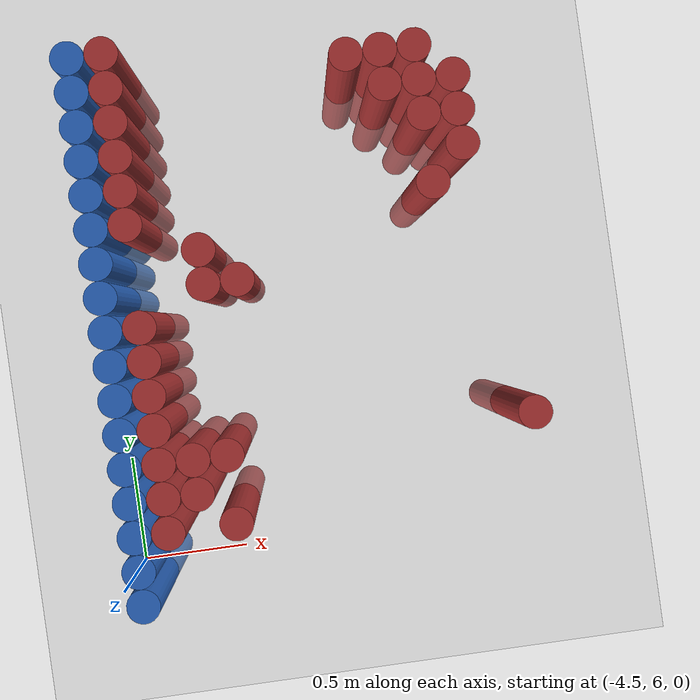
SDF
<sdf version="1.6">
 <world name="default">
  <model name="ground_plane">
   <static>1</static>
   <link name="link">
    <collision name="collision">
     <geometry><plane><normal>0 0 1</normal><size>100 100</size></plane></geometry>
     <surface><friction><ode><mu>100</mu><mu2>50</mu2></ode></friction></surface>
    </collision>
    <visual name="visual">
     <cast_shadows>0</cast_shadows>
     <geometry><plane><normal>0 0 1</normal><size>100 100</size></plane></geometry>
     <material>
      <script><uri>file://media/materials/scripts/gazebo.material</uri><name>Gazebo/Grey</name></script>
     </material>
    </visual>
   </link>
  </model>
  <model name="unit_cylinder_101">
   <static>1</static>
   <pose>-4.425000 5.925000 0.000000 0.000000 0.000000 0.000000</pose>
   <link name="link">
    <inertial>
     <mass>1</mass>
     <inertia><ixx>0.145833</ixx><ixy>0</ixy><ixz>0</ixz><iyy>0.145833</iyy><iyz>0</iyz><izz>0.125</izz></inertia>
    </inertial>
    <collision name="collision">
     <geometry><cylinder><radius>0.075000</radius><length>1</length></cylinder></geometry>
    </collision>
    <visual name="visual">
     <geometry><cylinder><radius>0.075000</radius><length>1</length></cylinder></geometry>
     <material>
      <ambient>0.152000 0.379000 0.720000 1</ambient>
      <diffuse>0.152000 0.379000 0.720000 1</diffuse>
     </material>
     <material>
      <script><name>Gazebo/Grey</name><uri>file://media/materials/scripts/gazebo.material</uri></script>
     </material>
    </visual>
   </link>
  </model>
  <model name="unit_cylinder_102">
   <static>1</static>
   <pose>-4.425000 6.075000 0.000000 0.000000 0.000000 0.000000</pose>
   <link name="link">
    <inertial>
     <mass>1</mass>
     <inertia><ixx>0.145833</ixx><ixy>0</ixy><ixz>0</ixz><iyy>0.145833</iyy><iyz>0</iyz><izz>0.125</izz></inertia>
    </inertial>
    <collision name="collision">
     <geometry><cylinder><radius>0.075000</radius><length>1</length></cylinder></geometry>
    </collision>
    <visual name="visual">
     <geometry><cylinder><radius>0.075000</radius><length>1</length></cylinder></geometry>
     <material>
      <ambient>0.152000 0.379000 0.720000 1</ambient>
      <diffuse>0.152000 0.379000 0.720000 1</diffuse>
     </material>
     <material>
      <script><name>Gazebo/Grey</name><uri>file://media/materials/scripts/gazebo.material</uri></script>
     </material>
    </visual>
   </link>
  </model>
  <model name="unit_cylinder_103">
   <static>1</static>
   <pose>-4.425000 6.225000 0.000000 0.000000 0.000000 0.000000</pose>
   <link name="link">
    <inertial>
     <mass>1</mass>
     <inertia><ixx>0.145833</ixx><ixy>0</ixy><ixz>0</ixz><iyy>0.145833</iyy><iyz>0</iyz><izz>0.125</izz></inertia>
    </inertial>
    <collision name="collision">
     <geometry><cylinder><radius>0.075000</radius><length>1</length></cylinder></geometry>
    </collision>
    <visual name="visual">
     <geometry><cylinder><radius>0.075000</radius><length>1</length></cylinder></geometry>
     <material>
      <ambient>0.152000 0.379000 0.720000 1</ambient>
      <diffuse>0.152000 0.379000 0.720000 1</diffuse>
     </material>
     <material>
      <script><name>Gazebo/Grey</name><uri>file://media/materials/scripts/gazebo.material</uri></script>
     </material>
    </visual>
   </link>
  </model>
  <model name="unit_cylinder_104">
   <static>1</static>
   <pose>-4.425000 6.375000 0.000000 0.000000 0.000000 0.000000</pose>
   <link name="link">
    <inertial>
     <mass>1</mass>
     <inertia><ixx>0.145833</ixx><ixy>0</ixy><ixz>0</ixz><iyy>0.145833</iyy><iyz>0</iyz><izz>0.125</izz></inertia>
    </inertial>
    <collision name="collision">
     <geometry><cylinder><radius>0.075000</radius><length>1</length></cylinder></geometry>
    </collision>
    <visual name="visual">
     <geometry><cylinder><radius>0.075000</radius><length>1</length></cylinder></geometry>
     <material>
      <ambient>0.152000 0.379000 0.720000 1</ambient>
      <diffuse>0.152000 0.379000 0.720000 1</diffuse>
     </material>
     <material>
      <script><name>Gazebo/Grey</name><uri>file://media/materials/scripts/gazebo.material</uri></script>
     </material>
    </visual>
   </link>
  </model>
  <model name="unit_cylinder_105">
   <static>1</static>
   <pose>-4.425000 6.525000 0.000000 0.000000 0.000000 0.000000</pose>
   <link name="link">
    <inertial>
     <mass>1</mass>
     <inertia><ixx>0.145833</ixx><ixy>0</ixy><ixz>0</ixz><iyy>0.145833</iyy><iyz>0</iyz><izz>0.125</izz></inertia>
    </inertial>
    <collision name="collision">
     <geometry><cylinder><radius>0.075000</radius><length>1</length></cylinder></geometry>
    </collision>
    <visual name="visual">
     <geometry><cylinder><radius>0.075000</radius><length>1</length></cylinder></geometry>
     <material>
      <ambient>0.152000 0.379000 0.720000 1</ambient>
      <diffuse>0.152000 0.379000 0.720000 1</diffuse>
     </material>
     <material>
      <script><name>Gazebo/Grey</name><uri>file://media/materials/scripts/gazebo.material</uri></script>
     </material>
    </visual>
   </link>
  </model>
  <model name="unit_cylinder_106">
   <static>1</static>
   <pose>-4.425000 6.675000 0.000000 0.000000 0.000000 0.000000</pose>
   <link name="link">
    <inertial>
     <mass>1</mass>
     <inertia><ixx>0.145833</ixx><ixy>0</ixy><ixz>0</ixz><iyy>0.145833</iyy><iyz>0</iyz><izz>0.125</izz></inertia>
    </inertial>
    <collision name="collision">
     <geometry><cylinder><radius>0.075000</radius><length>1</length></cylinder></geometry>
    </collision>
    <visual name="visual">
     <geometry><cylinder><radius>0.075000</radius><length>1</length></cylinder></geometry>
     <material>
      <ambient>0.152000 0.379000 0.720000 1</ambient>
      <diffuse>0.152000 0.379000 0.720000 1</diffuse>
     </material>
     <material>
      <script><name>Gazebo/Grey</name><uri>file://media/materials/scripts/gazebo.material</uri></script>
     </material>
    </visual>
   </link>
  </model>
  <model name="unit_cylinder_107">
   <static>1</static>
   <pose>-4.425000 6.825000 0.000000 0.000000 0.000000 0.000000</pose>
   <link name="link">
    <inertial>
     <mass>1</mass>
     <inertia><ixx>0.145833</ixx><ixy>0</ixy><ixz>0</ixz><iyy>0.145833</iyy><iyz>0</iyz><izz>0.125</izz></inertia>
    </inertial>
    <collision name="collision">
     <geometry><cylinder><radius>0.075000</radius><length>1</length></cylinder></geometry>
    </collision>
    <visual name="visual">
     <geometry><cylinder><radius>0.075000</radius><length>1</length></cylinder></geometry>
     <material>
      <ambient>0.152000 0.379000 0.720000 1</ambient>
      <diffuse>0.152000 0.379000 0.720000 1</diffuse>
     </material>
     <material>
      <script><name>Gazebo/Grey</name><uri>file://media/materials/scripts/gazebo.material</uri></script>
     </material>
    </visual>
   </link>
  </model>
  <model name="unit_cylinder_108">
   <static>1</static>
   <pose>-4.425000 6.975000 0.000000 0.000000 0.000000 0.000000</pose>
   <link name="link">
    <inertial>
     <mass>1</mass>
     <inertia><ixx>0.145833</ixx><ixy>0</ixy><ixz>0</ixz><iyy>0.145833</iyy><iyz>0</iyz><izz>0.125</izz></inertia>
    </inertial>
    <collision name="collision">
     <geometry><cylinder><radius>0.075000</radius><length>1</length></cylinder></geometry>
    </collision>
    <visual name="visual">
     <geometry><cylinder><radius>0.075000</radius><length>1</length></cylinder></geometry>
     <material>
      <ambient>0.152000 0.379000 0.720000 1</ambient>
      <diffuse>0.152000 0.379000 0.720000 1</diffuse>
     </material>
     <material>
      <script><name>Gazebo/Grey</name><uri>file://media/materials/scripts/gazebo.material</uri></script>
     </material>
    </visual>
   </link>
  </model>
  <model name="unit_cylinder_109">
   <static>1</static>
   <pose>-4.425000 7.125000 0.000000 0.000000 0.000000 0.000000</pose>
   <link name="link">
    <inertial>
     <mass>1</mass>
     <inertia><ixx>0.145833</ixx><ixy>0</ixy><ixz>0</ixz><iyy>0.145833</iyy><iyz>0</iyz><izz>0.125</izz></inertia>
    </inertial>
    <collision name="collision">
     <geometry><cylinder><radius>0.075000</radius><length>1</length></cylinder></geometry>
    </collision>
    <visual name="visual">
     <geometry><cylinder><radius>0.075000</radius><length>1</length></cylinder></geometry>
     <material>
      <ambient>0.152000 0.379000 0.720000 1</ambient>
      <diffuse>0.152000 0.379000 0.720000 1</diffuse>
     </material>
     <material>
      <script><name>Gazebo/Grey</name><uri>file://media/materials/scripts/gazebo.material</uri></script>
     </material>
    </visual>
   </link>
  </model>
  <model name="unit_cylinder_110">
   <static>1</static>
   <pose>-4.425000 7.275000 0.000000 0.000000 0.000000 0.000000</pose>
   <link name="link">
    <inertial>
     <mass>1</mass>
     <inertia><ixx>0.145833</ixx><ixy>0</ixy><ixz>0</ixz><iyy>0.145833</iyy><iyz>0</iyz><izz>0.125</izz></inertia>
    </inertial>
    <collision name="collision">
     <geometry><cylinder><radius>0.075000</radius><length>1</length></cylinder></geometry>
    </collision>
    <visual name="visual">
     <geometry><cylinder><radius>0.075000</radius><length>1</length></cylinder></geometry>
     <material>
      <ambient>0.152000 0.379000 0.720000 1</ambient>
      <diffuse>0.152000 0.379000 0.720000 1</diffuse>
     </material>
     <material>
      <script><name>Gazebo/Grey</name><uri>file://media/materials/scripts/gazebo.material</uri></script>
     </material>
    </visual>
   </link>
  </model>
  <model name="unit_cylinder_111">
   <static>1</static>
   <pose>-4.425000 7.425000 0.000000 0.000000 0.000000 0.000000</pose>
   <link name="link">
    <inertial>
     <mass>1</mass>
     <inertia><ixx>0.145833</ixx><ixy>0</ixy><ixz>0</ixz><iyy>0.145833</iyy><iyz>0</iyz><izz>0.125</izz></inertia>
    </inertial>
    <collision name="collision">
     <geometry><cylinder><radius>0.075000</radius><length>1</length></cylinder></geometry>
    </collision>
    <visual name="visual">
     <geometry><cylinder><radius>0.075000</radius><length>1</length></cylinder></geometry>
     <material>
      <ambient>0.152000 0.379000 0.720000 1</ambient>
      <diffuse>0.152000 0.379000 0.720000 1</diffuse>
     </material>
     <material>
      <script><name>Gazebo/Grey</name><uri>file://media/materials/scripts/gazebo.material</uri></script>
     </material>
    </visual>
   </link>
  </model>
  <model name="unit_cylinder_112">
   <static>1</static>
   <pose>-4.425000 7.575000 0.000000 0.000000 0.000000 0.000000</pose>
   <link name="link">
    <inertial>
     <mass>1</mass>
     <inertia><ixx>0.145833</ixx><ixy>0</ixy><ixz>0</ixz><iyy>0.145833</iyy><iyz>0</iyz><izz>0.125</izz></inertia>
    </inertial>
    <collision name="collision">
     <geometry><cylinder><radius>0.075000</radius><length>1</length></cylinder></geometry>
    </collision>
    <visual name="visual">
     <geometry><cylinder><radius>0.075000</radius><length>1</length></cylinder></geometry>
     <material>
      <ambient>0.152000 0.379000 0.720000 1</ambient>
      <diffuse>0.152000 0.379000 0.720000 1</diffuse>
     </material>
     <material>
      <script><name>Gazebo/Grey</name><uri>file://media/materials/scripts/gazebo.material</uri></script>
     </material>
    </visual>
   </link>
  </model>
  <model name="unit_cylinder_113">
   <static>1</static>
   <pose>-4.425000 7.725000 0.000000 0.000000 0.000000 0.000000</pose>
   <link name="link">
    <inertial>
     <mass>1</mass>
     <inertia><ixx>0.145833</ixx><ixy>0</ixy><ixz>0</ixz><iyy>0.145833</iyy><iyz>0</iyz><izz>0.125</izz></inertia>
    </inertial>
    <collision name="collision">
     <geometry><cylinder><radius>0.075000</radius><length>1</length></cylinder></geometry>
    </collision>
    <visual name="visual">
     <geometry><cylinder><radius>0.075000</radius><length>1</length></cylinder></geometry>
     <material>
      <ambient>0.152000 0.379000 0.720000 1</ambient>
      <diffuse>0.152000 0.379000 0.720000 1</diffuse>
     </material>
     <material>
      <script><name>Gazebo/Grey</name><uri>file://media/materials/scripts/gazebo.material</uri></script>
     </material>
    </visual>
   </link>
  </model>
  <model name="unit_cylinder_114">
   <static>1</static>
   <pose>-4.425000 7.875000 0.000000 0.000000 0.000000 0.000000</pose>
   <link name="link">
    <inertial>
     <mass>1</mass>
     <inertia><ixx>0.145833</ixx><ixy>0</ixy><ixz>0</ixz><iyy>0.145833</iyy><iyz>0</iyz><izz>0.125</izz></inertia>
    </inertial>
    <collision name="collision">
     <geometry><cylinder><radius>0.075000</radius><length>1</length></cylinder></geometry>
    </collision>
    <visual name="visual">
     <geometry><cylinder><radius>0.075000</radius><length>1</length></cylinder></geometry>
     <material>
      <ambient>0.152000 0.379000 0.720000 1</ambient>
      <diffuse>0.152000 0.379000 0.720000 1</diffuse>
     </material>
     <material>
      <script><name>Gazebo/Grey</name><uri>file://media/materials/scripts/gazebo.material</uri></script>
     </material>
    </visual>
   </link>
  </model>
  <model name="unit_cylinder_115">
   <static>1</static>
   <pose>-4.425000 8.025000 0.000000 0.000000 0.000000 0.000000</pose>
   <link name="link">
    <inertial>
     <mass>1</mass>
     <inertia><ixx>0.145833</ixx><ixy>0</ixy><ixz>0</ixz><iyy>0.145833</iyy><iyz>0</iyz><izz>0.125</izz></inertia>
    </inertial>
    <collision name="collision">
     <geometry><cylinder><radius>0.075000</radius><length>1</length></cylinder></geometry>
    </collision>
    <visual name="visual">
     <geometry><cylinder><radius>0.075000</radius><length>1</length></cylinder></geometry>
     <material>
      <ambient>0.152000 0.379000 0.720000 1</ambient>
      <diffuse>0.152000 0.379000 0.720000 1</diffuse>
     </material>
     <material>
      <script><name>Gazebo/Grey</name><uri>file://media/materials/scripts/gazebo.material</uri></script>
     </material>
    </visual>
   </link>
  </model>
  <model name="unit_cylinder_116">
   <static>1</static>
   <pose>-4.425000 8.175000 0.000000 0.000000 0.000000 0.000000</pose>
   <link name="link">
    <inertial>
     <mass>1</mass>
     <inertia><ixx>0.145833</ixx><ixy>0</ixy><ixz>0</ixz><iyy>0.145833</iyy><iyz>0</iyz><izz>0.125</izz></inertia>
    </inertial>
    <collision name="collision">
     <geometry><cylinder><radius>0.075000</radius><length>1</length></cylinder></geometry>
    </collision>
    <visual name="visual">
     <geometry><cylinder><radius>0.075000</radius><length>1</length></cylinder></geometry>
     <material>
      <ambient>0.152000 0.379000 0.720000 1</ambient>
      <diffuse>0.152000 0.379000 0.720000 1</diffuse>
     </material>
     <material>
      <script><name>Gazebo/Grey</name><uri>file://media/materials/scripts/gazebo.material</uri></script>
     </material>
    </visual>
   </link>
  </model>
  <model name="unit_cylinder_117">
   <static>1</static>
   <pose>-4.425000 8.325000 0.000000 0.000000 0.000000 0.000000</pose>
   <link name="link">
    <inertial>
     <mass>1</mass>
     <inertia><ixx>0.145833</ixx><ixy>0</ixy><ixz>0</ixz><iyy>0.145833</iyy><iyz>0</iyz><izz>0.125</izz></inertia>
    </inertial>
    <collision name="collision">
     <geometry><cylinder><radius>0.075000</radius><length>1</length></cylinder></geometry>
    </collision>
    <visual name="visual">
     <geometry><cylinder><radius>0.075000</radius><length>1</length></cylinder></geometry>
     <material>
      <ambient>0.152000 0.379000 0.720000 1</ambient>
      <diffuse>0.152000 0.379000 0.720000 1</diffuse>
     </material>
     <material>
      <script><name>Gazebo/Grey</name><uri>file://media/materials/scripts/gazebo.material</uri></script>
     </material>
    </visual>
   </link>
  </model>
  <model name="unit_cylinder_130">
   <static>1</static>
   <pose>-4.275000 6.225000 0.000000 0.000000 0.000000 0.000000</pose>
   <link name="link">
    <inertial>
     <mass>1</mass>
     <inertia><ixx>0.145833</ixx><ixy>0</ixy><ixz>0</ixz><iyy>0.145833</iyy><iyz>0</iyz><izz>0.125</izz></inertia>
    </inertial>
    <collision name="collision">
     <geometry><cylinder><radius>0.075000</radius><length>1</length></cylinder></geometry>
    </collision>
    <visual name="visual">
     <geometry><cylinder><radius>0.075000</radius><length>1</length></cylinder></geometry>
     <material>
      <ambient>0.648000 0.192000 0.192000 1</ambient>
      <diffuse>0.648000 0.192000 0.192000 1</diffuse>
     </material>
     <material>
      <script><name>Gazebo/Grey</name><uri>file://media/materials/scripts/gazebo.material</uri></script>
     </material>
    </visual>
   </link>
  </model>
  <model name="unit_cylinder_131">
   <static>1</static>
   <pose>-4.275000 6.375000 0.000000 0.000000 0.000000 0.000000</pose>
   <link name="link">
    <inertial>
     <mass>1</mass>
     <inertia><ixx>0.145833</ixx><ixy>0</ixy><ixz>0</ixz><iyy>0.145833</iyy><iyz>0</iyz><izz>0.125</izz></inertia>
    </inertial>
    <collision name="collision">
     <geometry><cylinder><radius>0.075000</radius><length>1</length></cylinder></geometry>
    </collision>
    <visual name="visual">
     <geometry><cylinder><radius>0.075000</radius><length>1</length></cylinder></geometry>
     <material>
      <ambient>0.648000 0.192000 0.192000 1</ambient>
      <diffuse>0.648000 0.192000 0.192000 1</diffuse>
     </material>
     <material>
      <script><name>Gazebo/Grey</name><uri>file://media/materials/scripts/gazebo.material</uri></script>
     </material>
    </visual>
   </link>
  </model>
  <model name="unit_cylinder_132">
   <static>1</static>
   <pose>-4.275000 6.525000 0.000000 0.000000 0.000000 0.000000</pose>
   <link name="link">
    <inertial>
     <mass>1</mass>
     <inertia><ixx>0.145833</ixx><ixy>0</ixy><ixz>0</ixz><iyy>0.145833</iyy><iyz>0</iyz><izz>0.125</izz></inertia>
    </inertial>
    <collision name="collision">
     <geometry><cylinder><radius>0.075000</radius><length>1</length></cylinder></geometry>
    </collision>
    <visual name="visual">
     <geometry><cylinder><radius>0.075000</radius><length>1</length></cylinder></geometry>
     <material>
      <ambient>0.648000 0.192000 0.192000 1</ambient>
      <diffuse>0.648000 0.192000 0.192000 1</diffuse>
     </material>
     <material>
      <script><name>Gazebo/Grey</name><uri>file://media/materials/scripts/gazebo.material</uri></script>
     </material>
    </visual>
   </link>
  </model>
  <model name="unit_cylinder_133">
   <static>1</static>
   <pose>-4.275000 6.675000 0.000000 0.000000 0.000000 0.000000</pose>
   <link name="link">
    <inertial>
     <mass>1</mass>
     <inertia><ixx>0.145833</ixx><ixy>0</ixy><ixz>0</ixz><iyy>0.145833</iyy><iyz>0</iyz><izz>0.125</izz></inertia>
    </inertial>
    <collision name="collision">
     <geometry><cylinder><radius>0.075000</radius><length>1</length></cylinder></geometry>
    </collision>
    <visual name="visual">
     <geometry><cylinder><radius>0.075000</radius><length>1</length></cylinder></geometry>
     <material>
      <ambient>0.648000 0.192000 0.192000 1</ambient>
      <diffuse>0.648000 0.192000 0.192000 1</diffuse>
     </material>
     <material>
      <script><name>Gazebo/Grey</name><uri>file://media/materials/scripts/gazebo.material</uri></script>
     </material>
    </visual>
   </link>
  </model>
  <model name="unit_cylinder_134">
   <static>1</static>
   <pose>-4.275000 6.825000 0.000000 0.000000 0.000000 0.000000</pose>
   <link name="link">
    <inertial>
     <mass>1</mass>
     <inertia><ixx>0.145833</ixx><ixy>0</ixy><ixz>0</ixz><iyy>0.145833</iyy><iyz>0</iyz><izz>0.125</izz></inertia>
    </inertial>
    <collision name="collision">
     <geometry><cylinder><radius>0.075000</radius><length>1</length></cylinder></geometry>
    </collision>
    <visual name="visual">
     <geometry><cylinder><radius>0.075000</radius><length>1</length></cylinder></geometry>
     <material>
      <ambient>0.648000 0.192000 0.192000 1</ambient>
      <diffuse>0.648000 0.192000 0.192000 1</diffuse>
     </material>
     <material>
      <script><name>Gazebo/Grey</name><uri>file://media/materials/scripts/gazebo.material</uri></script>
     </material>
    </visual>
   </link>
  </model>
  <model name="unit_cylinder_135">
   <static>1</static>
   <pose>-4.275000 6.975000 0.000000 0.000000 0.000000 0.000000</pose>
   <link name="link">
    <inertial>
     <mass>1</mass>
     <inertia><ixx>0.145833</ixx><ixy>0</ixy><ixz>0</ixz><iyy>0.145833</iyy><iyz>0</iyz><izz>0.125</izz></inertia>
    </inertial>
    <collision name="collision">
     <geometry><cylinder><radius>0.075000</radius><length>1</length></cylinder></geometry>
    </collision>
    <visual name="visual">
     <geometry><cylinder><radius>0.075000</radius><length>1</length></cylinder></geometry>
     <material>
      <ambient>0.648000 0.192000 0.192000 1</ambient>
      <diffuse>0.648000 0.192000 0.192000 1</diffuse>
     </material>
     <material>
      <script><name>Gazebo/Grey</name><uri>file://media/materials/scripts/gazebo.material</uri></script>
     </material>
    </visual>
   </link>
  </model>
  <model name="unit_cylinder_136">
   <static>1</static>
   <pose>-4.275000 7.125000 0.000000 0.000000 0.000000 0.000000</pose>
   <link name="link">
    <inertial>
     <mass>1</mass>
     <inertia><ixx>0.145833</ixx><ixy>0</ixy><ixz>0</ixz><iyy>0.145833</iyy><iyz>0</iyz><izz>0.125</izz></inertia>
    </inertial>
    <collision name="collision">
     <geometry><cylinder><radius>0.075000</radius><length>1</length></cylinder></geometry>
    </collision>
    <visual name="visual">
     <geometry><cylinder><radius>0.075000</radius><length>1</length></cylinder></geometry>
     <material>
      <ambient>0.648000 0.192000 0.192000 1</ambient>
      <diffuse>0.648000 0.192000 0.192000 1</diffuse>
     </material>
     <material>
      <script><name>Gazebo/Grey</name><uri>file://media/materials/scripts/gazebo.material</uri></script>
     </material>
    </visual>
   </link>
  </model>
  <model name="unit_cylinder_137">
   <static>1</static>
   <pose>-4.275000 7.575000 0.000000 0.000000 0.000000 0.000000</pose>
   <link name="link">
    <inertial>
     <mass>1</mass>
     <inertia><ixx>0.145833</ixx><ixy>0</ixy><ixz>0</ixz><iyy>0.145833</iyy><iyz>0</iyz><izz>0.125</izz></inertia>
    </inertial>
    <collision name="collision">
     <geometry><cylinder><radius>0.075000</radius><length>1</length></cylinder></geometry>
    </collision>
    <visual name="visual">
     <geometry><cylinder><radius>0.075000</radius><length>1</length></cylinder></geometry>
     <material>
      <ambient>0.648000 0.192000 0.192000 1</ambient>
      <diffuse>0.648000 0.192000 0.192000 1</diffuse>
     </material>
     <material>
      <script><name>Gazebo/Grey</name><uri>file://media/materials/scripts/gazebo.material</uri></script>
     </material>
    </visual>
   </link>
  </model>
  <model name="unit_cylinder_138">
   <static>1</static>
   <pose>-4.275000 7.725000 0.000000 0.000000 0.000000 0.000000</pose>
   <link name="link">
    <inertial>
     <mass>1</mass>
     <inertia><ixx>0.145833</ixx><ixy>0</ixy><ixz>0</ixz><iyy>0.145833</iyy><iyz>0</iyz><izz>0.125</izz></inertia>
    </inertial>
    <collision name="collision">
     <geometry><cylinder><radius>0.075000</radius><length>1</length></cylinder></geometry>
    </collision>
    <visual name="visual">
     <geometry><cylinder><radius>0.075000</radius><length>1</length></cylinder></geometry>
     <material>
      <ambient>0.648000 0.192000 0.192000 1</ambient>
      <diffuse>0.648000 0.192000 0.192000 1</diffuse>
     </material>
     <material>
      <script><name>Gazebo/Grey</name><uri>file://media/materials/scripts/gazebo.material</uri></script>
     </material>
    </visual>
   </link>
  </model>
  <model name="unit_cylinder_139">
   <static>1</static>
   <pose>-4.275000 7.875000 0.000000 0.000000 0.000000 0.000000</pose>
   <link name="link">
    <inertial>
     <mass>1</mass>
     <inertia><ixx>0.145833</ixx><ixy>0</ixy><ixz>0</ixz><iyy>0.145833</iyy><iyz>0</iyz><izz>0.125</izz></inertia>
    </inertial>
    <collision name="collision">
     <geometry><cylinder><radius>0.075000</radius><length>1</length></cylinder></geometry>
    </collision>
    <visual name="visual">
     <geometry><cylinder><radius>0.075000</radius><length>1</length></cylinder></geometry>
     <material>
      <ambient>0.648000 0.192000 0.192000 1</ambient>
      <diffuse>0.648000 0.192000 0.192000 1</diffuse>
     </material>
     <material>
      <script><name>Gazebo/Grey</name><uri>file://media/materials/scripts/gazebo.material</uri></script>
     </material>
    </visual>
   </link>
  </model>
  <model name="unit_cylinder_140">
   <static>1</static>
   <pose>-4.275000 8.025000 0.000000 0.000000 0.000000 0.000000</pose>
   <link name="link">
    <inertial>
     <mass>1</mass>
     <inertia><ixx>0.145833</ixx><ixy>0</ixy><ixz>0</ixz><iyy>0.145833</iyy><iyz>0</iyz><izz>0.125</izz></inertia>
    </inertial>
    <collision name="collision">
     <geometry><cylinder><radius>0.075000</radius><length>1</length></cylinder></geometry>
    </collision>
    <visual name="visual">
     <geometry><cylinder><radius>0.075000</radius><length>1</length></cylinder></geometry>
     <material>
      <ambient>0.648000 0.192000 0.192000 1</ambient>
      <diffuse>0.648000 0.192000 0.192000 1</diffuse>
     </material>
     <material>
      <script><name>Gazebo/Grey</name><uri>file://media/materials/scripts/gazebo.material</uri></script>
     </material>
    </visual>
   </link>
  </model>
  <model name="unit_cylinder_141">
   <static>1</static>
   <pose>-4.275000 8.175000 0.000000 0.000000 0.000000 0.000000</pose>
   <link name="link">
    <inertial>
     <mass>1</mass>
     <inertia><ixx>0.145833</ixx><ixy>0</ixy><ixz>0</ixz><iyy>0.145833</iyy><iyz>0</iyz><izz>0.125</izz></inertia>
    </inertial>
    <collision name="collision">
     <geometry><cylinder><radius>0.075000</radius><length>1</length></cylinder></geometry>
    </collision>
    <visual name="visual">
     <geometry><cylinder><radius>0.075000</radius><length>1</length></cylinder></geometry>
     <material>
      <ambient>0.648000 0.192000 0.192000 1</ambient>
      <diffuse>0.648000 0.192000 0.192000 1</diffuse>
     </material>
     <material>
      <script><name>Gazebo/Grey</name><uri>file://media/materials/scripts/gazebo.material</uri></script>
     </material>
    </visual>
   </link>
  </model>
  <model name="unit_cylinder_142">
   <static>1</static>
   <pose>-4.275000 8.325000 0.000000 0.000000 0.000000 0.000000</pose>
   <link name="link">
    <inertial>
     <mass>1</mass>
     <inertia><ixx>0.145833</ixx><ixy>0</ixy><ixz>0</ixz><iyy>0.145833</iyy><iyz>0</iyz><izz>0.125</izz></inertia>
    </inertial>
    <collision name="collision">
     <geometry><cylinder><radius>0.075000</radius><length>1</length></cylinder></geometry>
    </collision>
    <visual name="visual">
     <geometry><cylinder><radius>0.075000</radius><length>1</length></cylinder></geometry>
     <material>
      <ambient>0.648000 0.192000 0.192000 1</ambient>
      <diffuse>0.648000 0.192000 0.192000 1</diffuse>
     </material>
     <material>
      <script><name>Gazebo/Grey</name><uri>file://media/materials/scripts/gazebo.material</uri></script>
     </material>
    </visual>
   </link>
  </model>
  <model name="unit_cylinder_148">
   <static>1</static>
   <pose>-4.125000 6.375000 0.000000 0.000000 0.000000 0.000000</pose>
   <link name="link">
    <inertial>
     <mass>1</mass>
     <inertia><ixx>0.145833</ixx><ixy>0</ixy><ixz>0</ixz><iyy>0.145833</iyy><iyz>0</iyz><izz>0.125</izz></inertia>
    </inertial>
    <collision name="collision">
     <geometry><cylinder><radius>0.075000</radius><length>1</length></cylinder></geometry>
    </collision>
    <visual name="visual">
     <geometry><cylinder><radius>0.075000</radius><length>1</length></cylinder></geometry>
     <material>
      <ambient>0.648000 0.192000 0.192000 1</ambient>
      <diffuse>0.648000 0.192000 0.192000 1</diffuse>
     </material>
     <material>
      <script><name>Gazebo/Grey</name><uri>file://media/materials/scripts/gazebo.material</uri></script>
     </material>
    </visual>
   </link>
  </model>
  <model name="unit_cylinder_149">
   <static>1</static>
   <pose>-4.125000 6.525000 0.000000 0.000000 0.000000 0.000000</pose>
   <link name="link">
    <inertial>
     <mass>1</mass>
     <inertia><ixx>0.145833</ixx><ixy>0</ixy><ixz>0</ixz><iyy>0.145833</iyy><iyz>0</iyz><izz>0.125</izz></inertia>
    </inertial>
    <collision name="collision">
     <geometry><cylinder><radius>0.075000</radius><length>1</length></cylinder></geometry>
    </collision>
    <visual name="visual">
     <geometry><cylinder><radius>0.075000</radius><length>1</length></cylinder></geometry>
     <material>
      <ambient>0.648000 0.192000 0.192000 1</ambient>
      <diffuse>0.648000 0.192000 0.192000 1</diffuse>
     </material>
     <material>
      <script><name>Gazebo/Grey</name><uri>file://media/materials/scripts/gazebo.material</uri></script>
     </material>
    </visual>
   </link>
  </model>
  <model name="unit_cylinder_157">
   <static>1</static>
   <pose>-3.975000 6.225000 0.000000 0.000000 0.000000 0.000000</pose>
   <link name="link">
    <inertial>
     <mass>1</mass>
     <inertia><ixx>0.145833</ixx><ixy>0</ixy><ixz>0</ixz><iyy>0.145833</iyy><iyz>0</iyz><izz>0.125</izz></inertia>
    </inertial>
    <collision name="collision">
     <geometry><cylinder><radius>0.075000</radius><length>1</length></cylinder></geometry>
    </collision>
    <visual name="visual">
     <geometry><cylinder><radius>0.075000</radius><length>1</length></cylinder></geometry>
     <material>
      <ambient>0.648000 0.192000 0.192000 1</ambient>
      <diffuse>0.648000 0.192000 0.192000 1</diffuse>
     </material>
     <material>
      <script><name>Gazebo/Grey</name><uri>file://media/materials/scripts/gazebo.material</uri></script>
     </material>
    </visual>
   </link>
  </model>
  <model name="unit_cylinder_158">
   <static>1</static>
   <pose>-3.975000 6.525000 0.000000 0.000000 0.000000 0.000000</pose>
   <link name="link">
    <inertial>
     <mass>1</mass>
     <inertia><ixx>0.145833</ixx><ixy>0</ixy><ixz>0</ixz><iyy>0.145833</iyy><iyz>0</iyz><izz>0.125</izz></inertia>
    </inertial>
    <collision name="collision">
     <geometry><cylinder><radius>0.075000</radius><length>1</length></cylinder></geometry>
    </collision>
    <visual name="visual">
     <geometry><cylinder><radius>0.075000</radius><length>1</length></cylinder></geometry>
     <material>
      <ambient>0.648000 0.192000 0.192000 1</ambient>
      <diffuse>0.648000 0.192000 0.192000 1</diffuse>
     </material>
     <material>
      <script><name>Gazebo/Grey</name><uri>file://media/materials/scripts/gazebo.material</uri></script>
     </material>
    </visual>
   </link>
  </model>
  <model name="unit_cylinder_159">
   <static>1</static>
   <pose>-3.975000 7.275000 0.000000 0.000000 0.000000 0.000000</pose>
   <link name="link">
    <inertial>
     <mass>1</mass>
     <inertia><ixx>0.145833</ixx><ixy>0</ixy><ixz>0</ixz><iyy>0.145833</iyy><iyz>0</iyz><izz>0.125</izz></inertia>
    </inertial>
    <collision name="collision">
     <geometry><cylinder><radius>0.075000</radius><length>1</length></cylinder></geometry>
    </collision>
    <visual name="visual">
     <geometry><cylinder><radius>0.075000</radius><length>1</length></cylinder></geometry>
     <material>
      <ambient>0.648000 0.192000 0.192000 1</ambient>
      <diffuse>0.648000 0.192000 0.192000 1</diffuse>
     </material>
     <material>
      <script><name>Gazebo/Grey</name><uri>file://media/materials/scripts/gazebo.material</uri></script>
     </material>
    </visual>
   </link>
  </model>
  <model name="unit_cylinder_160">
   <static>1</static>
   <pose>-3.975000 7.425000 0.000000 0.000000 0.000000 0.000000</pose>
   <link name="link">
    <inertial>
     <mass>1</mass>
     <inertia><ixx>0.145833</ixx><ixy>0</ixy><ixz>0</ixz><iyy>0.145833</iyy><iyz>0</iyz><izz>0.125</izz></inertia>
    </inertial>
    <collision name="collision">
     <geometry><cylinder><radius>0.075000</radius><length>1</length></cylinder></geometry>
    </collision>
    <visual name="visual">
     <geometry><cylinder><radius>0.075000</radius><length>1</length></cylinder></geometry>
     <material>
      <ambient>0.648000 0.192000 0.192000 1</ambient>
      <diffuse>0.648000 0.192000 0.192000 1</diffuse>
     </material>
     <material>
      <script><name>Gazebo/Grey</name><uri>file://media/materials/scripts/gazebo.material</uri></script>
     </material>
    </visual>
   </link>
  </model>
  <model name="unit_cylinder_165">
   <static>1</static>
   <pose>-3.825000 7.275000 0.000000 0.000000 0.000000 0.000000</pose>
   <link name="link">
    <inertial>
     <mass>1</mass>
     <inertia><ixx>0.145833</ixx><ixy>0</ixy><ixz>0</ixz><iyy>0.145833</iyy><iyz>0</iyz><izz>0.125</izz></inertia>
    </inertial>
    <collision name="collision">
     <geometry><cylinder><radius>0.075000</radius><length>1</length></cylinder></geometry>
    </collision>
    <visual name="visual">
     <geometry><cylinder><radius>0.075000</radius><length>1</length></cylinder></geometry>
     <material>
      <ambient>0.648000 0.192000 0.192000 1</ambient>
      <diffuse>0.648000 0.192000 0.192000 1</diffuse>
     </material>
     <material>
      <script><name>Gazebo/Grey</name><uri>file://media/materials/scripts/gazebo.material</uri></script>
     </material>
    </visual>
   </link>
  </model>
  <model name="unit_cylinder_188">
   <static>1</static>
   <pose>-3.225000 8.175000 0.000000 0.000000 0.000000 0.000000</pose>
   <link name="link">
    <inertial>
     <mass>1</mass>
     <inertia><ixx>0.145833</ixx><ixy>0</ixy><ixz>0</ixz><iyy>0.145833</iyy><iyz>0</iyz><izz>0.125</izz></inertia>
    </inertial>
    <collision name="collision">
     <geometry><cylinder><radius>0.075000</radius><length>1</length></cylinder></geometry>
    </collision>
    <visual name="visual">
     <geometry><cylinder><radius>0.075000</radius><length>1</length></cylinder></geometry>
     <material>
      <ambient>0.648000 0.192000 0.192000 1</ambient>
      <diffuse>0.648000 0.192000 0.192000 1</diffuse>
     </material>
     <material>
      <script><name>Gazebo/Grey</name><uri>file://media/materials/scripts/gazebo.material</uri></script>
     </material>
    </visual>
   </link>
  </model>
  <model name="unit_cylinder_194">
   <static>1</static>
   <pose>-3.075000 8.025000 0.000000 0.000000 0.000000 0.000000</pose>
   <link name="link">
    <inertial>
     <mass>1</mass>
     <inertia><ixx>0.145833</ixx><ixy>0</ixy><ixz>0</ixz><iyy>0.145833</iyy><iyz>0</iyz><izz>0.125</izz></inertia>
    </inertial>
    <collision name="collision">
     <geometry><cylinder><radius>0.075000</radius><length>1</length></cylinder></geometry>
    </collision>
    <visual name="visual">
     <geometry><cylinder><radius>0.075000</radius><length>1</length></cylinder></geometry>
     <material>
      <ambient>0.648000 0.192000 0.192000 1</ambient>
      <diffuse>0.648000 0.192000 0.192000 1</diffuse>
     </material>
     <material>
      <script><name>Gazebo/Grey</name><uri>file://media/materials/scripts/gazebo.material</uri></script>
     </material>
    </visual>
   </link>
  </model>
  <model name="unit_cylinder_195">
   <static>1</static>
   <pose>-3.075000 8.175000 0.000000 0.000000 0.000000 0.000000</pose>
   <link name="link">
    <inertial>
     <mass>1</mass>
     <inertia><ixx>0.145833</ixx><ixy>0</ixy><ixz>0</ixz><iyy>0.145833</iyy><iyz>0</iyz><izz>0.125</izz></inertia>
    </inertial>
    <collision name="collision">
     <geometry><cylinder><radius>0.075000</radius><length>1</length></cylinder></geometry>
    </collision>
    <visual name="visual">
     <geometry><cylinder><radius>0.075000</radius><length>1</length></cylinder></geometry>
     <material>
      <ambient>0.648000 0.192000 0.192000 1</ambient>
      <diffuse>0.648000 0.192000 0.192000 1</diffuse>
     </material>
     <material>
      <script><name>Gazebo/Grey</name><uri>file://media/materials/scripts/gazebo.material</uri></script>
     </material>
    </visual>
   </link>
  </model>
  <model name="unit_cylinder_200">
   <static>1</static>
   <pose>-2.925000 7.575000 0.000000 0.000000 0.000000 0.000000</pose>
   <link name="link">
    <inertial>
     <mass>1</mass>
     <inertia><ixx>0.145833</ixx><ixy>0</ixy><ixz>0</ixz><iyy>0.145833</iyy><iyz>0</iyz><izz>0.125</izz></inertia>
    </inertial>
    <collision name="collision">
     <geometry><cylinder><radius>0.075000</radius><length>1</length></cylinder></geometry>
    </collision>
    <visual name="visual">
     <geometry><cylinder><radius>0.075000</radius><length>1</length></cylinder></geometry>
     <material>
      <ambient>0.648000 0.192000 0.192000 1</ambient>
      <diffuse>0.648000 0.192000 0.192000 1</diffuse>
     </material>
     <material>
      <script><name>Gazebo/Grey</name><uri>file://media/materials/scripts/gazebo.material</uri></script>
     </material>
    </visual>
   </link>
  </model>
  <model name="unit_cylinder_201">
   <static>1</static>
   <pose>-2.925000 7.875000 0.000000 0.000000 0.000000 0.000000</pose>
   <link name="link">
    <inertial>
     <mass>1</mass>
     <inertia><ixx>0.145833</ixx><ixy>0</ixy><ixz>0</ixz><iyy>0.145833</iyy><iyz>0</iyz><izz>0.125</izz></inertia>
    </inertial>
    <collision name="collision">
     <geometry><cylinder><radius>0.075000</radius><length>1</length></cylinder></geometry>
    </collision>
    <visual name="visual">
     <geometry><cylinder><radius>0.075000</radius><length>1</length></cylinder></geometry>
     <material>
      <ambient>0.648000 0.192000 0.192000 1</ambient>
      <diffuse>0.648000 0.192000 0.192000 1</diffuse>
     </material>
     <material>
      <script><name>Gazebo/Grey</name><uri>file://media/materials/scripts/gazebo.material</uri></script>
     </material>
    </visual>
   </link>
  </model>
  <model name="unit_cylinder_202">
   <static>1</static>
   <pose>-2.925000 8.025000 0.000000 0.000000 0.000000 0.000000</pose>
   <link name="link">
    <inertial>
     <mass>1</mass>
     <inertia><ixx>0.145833</ixx><ixy>0</ixy><ixz>0</ixz><iyy>0.145833</iyy><iyz>0</iyz><izz>0.125</izz></inertia>
    </inertial>
    <collision name="collision">
     <geometry><cylinder><radius>0.075000</radius><length>1</length></cylinder></geometry>
    </collision>
    <visual name="visual">
     <geometry><cylinder><radius>0.075000</radius><length>1</length></cylinder></geometry>
     <material>
      <ambient>0.648000 0.192000 0.192000 1</ambient>
      <diffuse>0.648000 0.192000 0.192000 1</diffuse>
     </material>
     <material>
      <script><name>Gazebo/Grey</name><uri>file://media/materials/scripts/gazebo.material</uri></script>
     </material>
    </visual>
   </link>
  </model>
  <model name="unit_cylinder_203">
   <static>1</static>
   <pose>-2.925000 8.175000 0.000000 0.000000 0.000000 0.000000</pose>
   <link name="link">
    <inertial>
     <mass>1</mass>
     <inertia><ixx>0.145833</ixx><ixy>0</ixy><ixz>0</ixz><iyy>0.145833</iyy><iyz>0</iyz><izz>0.125</izz></inertia>
    </inertial>
    <collision name="collision">
     <geometry><cylinder><radius>0.075000</radius><length>1</length></cylinder></geometry>
    </collision>
    <visual name="visual">
     <geometry><cylinder><radius>0.075000</radius><length>1</length></cylinder></geometry>
     <material>
      <ambient>0.648000 0.192000 0.192000 1</ambient>
      <diffuse>0.648000 0.192000 0.192000 1</diffuse>
     </material>
     <material>
      <script><name>Gazebo/Grey</name><uri>file://media/materials/scripts/gazebo.material</uri></script>
     </material>
    </visual>
   </link>
  </model>
  <model name="unit_cylinder_207">
   <static>1</static>
   <pose>-2.775000 7.725000 0.000000 0.000000 0.000000 0.000000</pose>
   <link name="link">
    <inertial>
     <mass>1</mass>
     <inertia><ixx>0.145833</ixx><ixy>0</ixy><ixz>0</ixz><iyy>0.145833</iyy><iyz>0</iyz><izz>0.125</izz></inertia>
    </inertial>
    <collision name="collision">
     <geometry><cylinder><radius>0.075000</radius><length>1</length></cylinder></geometry>
    </collision>
    <visual name="visual">
     <geometry><cylinder><radius>0.075000</radius><length>1</length></cylinder></geometry>
     <material>
      <ambient>0.648000 0.192000 0.192000 1</ambient>
      <diffuse>0.648000 0.192000 0.192000 1</diffuse>
     </material>
     <material>
      <script><name>Gazebo/Grey</name><uri>file://media/materials/scripts/gazebo.material</uri></script>
     </material>
    </visual>
   </link>
  </model>
  <model name="unit_cylinder_208">
   <static>1</static>
   <pose>-2.775000 7.875000 0.000000 0.000000 0.000000 0.000000</pose>
   <link name="link">
    <inertial>
     <mass>1</mass>
     <inertia><ixx>0.145833</ixx><ixy>0</ixy><ixz>0</ixz><iyy>0.145833</iyy><iyz>0</iyz><izz>0.125</izz></inertia>
    </inertial>
    <collision name="collision">
     <geometry><cylinder><radius>0.075000</radius><length>1</length></cylinder></geometry>
    </collision>
    <visual name="visual">
     <geometry><cylinder><radius>0.075000</radius><length>1</length></cylinder></geometry>
     <material>
      <ambient>0.648000 0.192000 0.192000 1</ambient>
      <diffuse>0.648000 0.192000 0.192000 1</diffuse>
     </material>
     <material>
      <script><name>Gazebo/Grey</name><uri>file://media/materials/scripts/gazebo.material</uri></script>
     </material>
    </visual>
   </link>
  </model>
  <model name="unit_cylinder_209">
   <static>1</static>
   <pose>-2.775000 8.025000 0.000000 0.000000 0.000000 0.000000</pose>
   <link name="link">
    <inertial>
     <mass>1</mass>
     <inertia><ixx>0.145833</ixx><ixy>0</ixy><ixz>0</ixz><iyy>0.145833</iyy><iyz>0</iyz><izz>0.125</izz></inertia>
    </inertial>
    <collision name="collision">
     <geometry><cylinder><radius>0.075000</radius><length>1</length></cylinder></geometry>
    </collision>
    <visual name="visual">
     <geometry><cylinder><radius>0.075000</radius><length>1</length></cylinder></geometry>
     <material>
      <ambient>0.648000 0.192000 0.192000 1</ambient>
      <diffuse>0.648000 0.192000 0.192000 1</diffuse>
     </material>
     <material>
      <script><name>Gazebo/Grey</name><uri>file://media/materials/scripts/gazebo.material</uri></script>
     </material>
    </visual>
   </link>
  </model>
  <model name="unit_cylinder_212">
   <static>1</static>
   <pose>-2.625000 6.525000 0.000000 0.000000 0.000000 0.000000</pose>
   <link name="link">
    <inertial>
     <mass>1</mass>
     <inertia><ixx>0.145833</ixx><ixy>0</ixy><ixz>0</ixz><iyy>0.145833</iyy><iyz>0</iyz><izz>0.125</izz></inertia>
    </inertial>
    <collision name="collision">
     <geometry><cylinder><radius>0.075000</radius><length>1</length></cylinder></geometry>
    </collision>
    <visual name="visual">
     <geometry><cylinder><radius>0.075000</radius><length>1</length></cylinder></geometry>
     <material>
      <ambient>0.648000 0.192000 0.192000 1</ambient>
      <diffuse>0.648000 0.192000 0.192000 1</diffuse>
     </material>
     <material>
      <script><name>Gazebo/Grey</name><uri>file://media/materials/scripts/gazebo.material</uri></script>
     </material>
    </visual>
   </link>
  </model>
 </world>
</sdf>
